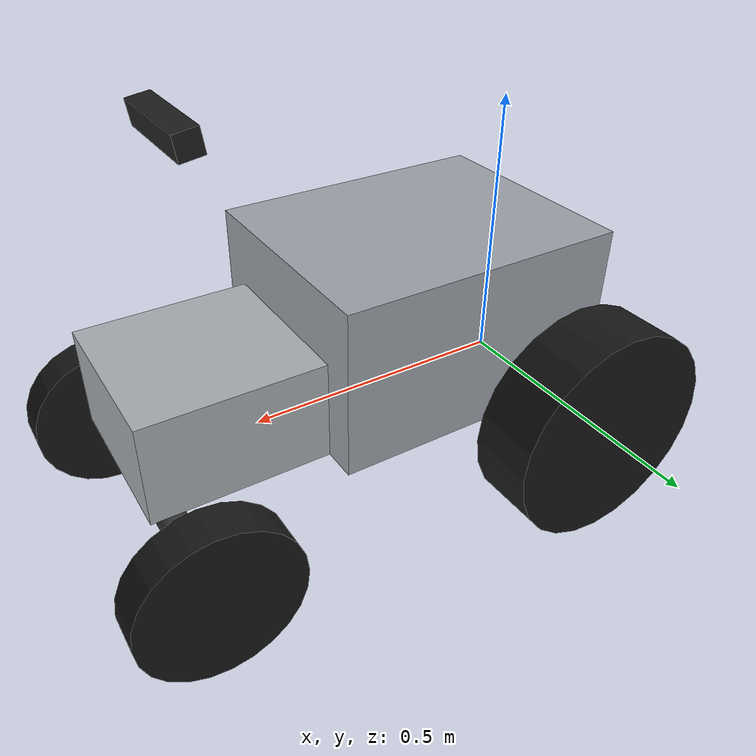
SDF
<?xml version="1.0"?>
<sdf version="1.10">
  <model name="carma_ugv">

    <!-- ===================== chassis ===================== -->
    <link name="base_link">
      <inertial>
        <pose>0.32 0 0.14 0 0 0</pose>
        <mass>35.0</mass>
        <inertia>
          <ixx>0.82</ixx><ixy>0</ixy><ixz>0</ixz>
          <iyy>1.87</iyy><iyz>0</iyz>
          <izz>2.23</izz>
        </inertia>
      </inertial>

      <!-- Main body, over the rear axle where the mass sits on a tractor. -->
      <collision name="body_collision">
        <pose>0.18 0 0.16 0 0 0</pose>
        <geometry><box><size>0.52 0.42 0.30</size></box></geometry>
      </collision>
      <visual name="body_visual">
        <pose>0.18 0 0.16 0 0 0</pose>
        <geometry><box><size>0.52 0.42 0.30</size></box></geometry>
        <material>
          <ambient>0.28 0.29 0.31 1</ambient>
          <diffuse>0.62 0.64 0.67 1</diffuse>
          <specular>0.30 0.30 0.30 1</specular>
        </material>
      </visual>

      <!-- Bonnet, lower and narrower, carrying the camera mount. -->
      <collision name="hood_collision">
        <pose>0.58 0 0.10 0 0 0</pose>
        <geometry><box><size>0.34 0.30 0.18</size></box></geometry>
      </collision>
      <visual name="hood_visual">
        <pose>0.58 0 0.10 0 0 0</pose>
        <geometry><box><size>0.34 0.30 0.18</size></box></geometry>
        <material>
          <ambient>0.30 0.31 0.33 1</ambient>
          <diffuse>0.66 0.68 0.70 1</diffuse>
          <specular>0.30 0.30 0.30 1</specular>
        </material>
      </visual>

      <!-- Front axle beam. Visual only; the kingpins carry the wheels. -->
      <visual name="front_axle_visual">
        <pose>0.70 0 -0.06 1.5707963 0 0</pose>
        <geometry><cylinder><radius>0.025</radius><length>0.52</length></cylinder></geometry>
        <material>
          <ambient>0.10 0.10 0.10 1</ambient>
          <diffuse>0.22 0.22 0.22 1</diffuse>
        </material>
      </visual>
    </link>

    <!-- ===================== sensors ===================== -->
    <!--
      0.55 above base_link, and base_link is 0.20 above ground, so the cameras
      sit at the documented 0.75 m.
    -->
    <link name="camera_link">
      <pose relative_to="base_link">0.60 0 0.55 0 0.15 0</pose>
      <inertial>
        <mass>0.30</mass>
        <inertia>
          <ixx>0.001</ixx><ixy>0</ixy><ixz>0</ixz>
          <iyy>0.001</iyy><iyz>0</iyz>
          <izz>0.001</izz>
        </inertia>
      </inertial>
      <visual name="camera_bar_visual">
        <geometry><box><size>0.04 0.18 0.04</size></box></geometry>
        <material>
          <ambient>0.05 0.05 0.05 1</ambient>
          <diffuse>0.12 0.12 0.12 1</diffuse>
        </material>
      </visual>

      <sensor name="stereo_left" type="camera">
        <pose>0 0.06 0 0 0 0</pose>
        <topic>/carma/stereo/left/image_rgb</topic>
        <update_rate>15</update_rate>
        <always_on>true</always_on>
        <camera>
          <camera_info_topic>/carma/stereo/left/camera_info</camera_info_topic>
          <horizontal_fov>1.0472</horizontal_fov>
          <image>
            <width>640</width>
            <height>480</height>
            <format>R8G8B8</format>
          </image>
          <clip><near>0.05</near><far>100.0</far></clip>
        </camera>
      </sensor>

      <sensor name="stereo_right" type="camera">
        <pose>0 -0.06 0 0 0 0</pose>
        <topic>/carma/stereo/right/image_rgb</topic>
        <update_rate>15</update_rate>
        <always_on>true</always_on>
        <camera>
          <camera_info_topic>/carma/stereo/right/camera_info</camera_info_topic>
          <horizontal_fov>1.0472</horizontal_fov>
          <image>
            <width>640</width>
            <height>480</height>
            <format>R8G8B8</format>
          </image>
          <clip><near>0.05</near><far>100.0</far></clip>
        </camera>
      </sensor>

      <!-- Co-located with stereo_left, same intrinsics: depth is registered. -->
      <sensor name="depth" type="depth_camera">
        <pose>0 0.06 0 0 0 0</pose>
        <topic>/carma/camera/depth</topic>
        <update_rate>15</update_rate>
        <always_on>true</always_on>
        <camera>
          <camera_info_topic>/carma/camera/depth/camera_info</camera_info_topic>
          <horizontal_fov>1.0472</horizontal_fov>
          <image>
            <width>640</width>
            <height>480</height>
            <format>R_FLOAT32</format>
          </image>
          <clip><near>0.10</near><far>20.0</far></clip>
        </camera>
      </sensor>
    </link>

    <joint name="camera_joint" type="fixed">
      <parent>base_link</parent>
      <child>camera_link</child>
    </joint>

    <!-- ===================== rear wheels, driven ===================== -->
    <link name="rear_left_wheel_link">
      <pose relative_to="base_link">0 0.30 0 -1.5707963 0 0</pose>
      <inertial>
        <mass>3.0</mass>
        <inertia>
          <ixx>0.0336</ixx><ixy>0</ixy><ixz>0</ixz>
          <iyy>0.0336</iyy><iyz>0</iyz>
          <izz>0.06</izz>
        </inertia>
      </inertial>
      <collision name="collision">
        <geometry><cylinder><radius>0.20</radius><length>0.12</length></cylinder></geometry>
        <surface>
          <friction>
            <ode><mu>1.4</mu><mu2>1.1</mu2></ode>
          </friction>
        </surface>
      </collision>
      <visual name="visual">
        <geometry><cylinder><radius>0.20</radius><length>0.12</length></cylinder></geometry>
        <material>
          <ambient>0.03 0.03 0.03 1</ambient>
          <diffuse>0.09 0.09 0.09 1</diffuse>
        </material>
      </visual>
    </link>

    <link name="rear_right_wheel_link">
      <pose relative_to="base_link">0 -0.30 0 -1.5707963 0 0</pose>
      <inertial>
        <mass>3.0</mass>
        <inertia>
          <ixx>0.0336</ixx><ixy>0</ixy><ixz>0</ixz>
          <iyy>0.0336</iyy><iyz>0</iyz>
          <izz>0.06</izz>
        </inertia>
      </inertial>
      <collision name="collision">
        <geometry><cylinder><radius>0.20</radius><length>0.12</length></cylinder></geometry>
        <surface>
          <friction>
            <ode><mu>1.4</mu><mu2>1.1</mu2></ode>
          </friction>
        </surface>
      </collision>
      <visual name="visual">
        <geometry><cylinder><radius>0.20</radius><length>0.12</length></cylinder></geometry>
        <material>
          <ambient>0.03 0.03 0.03 1</ambient>
          <diffuse>0.09 0.09 0.09 1</diffuse>
        </material>
      </visual>
    </link>

    <joint name="rear_left_wheel_joint" type="revolute">
      <parent>base_link</parent>
      <child>rear_left_wheel_link</child>
      <axis>
        <xyz expressed_in="__model__">0 1 0</xyz>
        <limit><lower>-1e16</lower><upper>1e16</upper></limit>
        <dynamics><damping>0.02</damping></dynamics>
      </axis>
    </joint>

    <joint name="rear_right_wheel_joint" type="revolute">
      <parent>base_link</parent>
      <child>rear_right_wheel_link</child>
      <axis>
        <xyz expressed_in="__model__">0 1 0</xyz>
        <limit><lower>-1e16</lower><upper>1e16</upper></limit>
        <dynamics><damping>0.02</damping></dynamics>
      </axis>
    </joint>

    <!-- ============ front wheels, steered and free-rolling ============ -->
    <link name="front_left_kingpin_link">
      <pose relative_to="base_link">0.70 0.26 -0.06 0 0 0</pose>
      <inertial>
        <mass>0.5</mass>
        <inertia>
          <ixx>0.001</ixx><ixy>0</ixy><ixz>0</ixz>
          <iyy>0.001</iyy><iyz>0</iyz>
          <izz>0.001</izz>
        </inertia>
      </inertial>
      <visual name="visual">
        <geometry><box><size>0.05 0.05 0.10</size></box></geometry>
        <material>
          <ambient>0.10 0.10 0.10 1</ambient>
          <diffuse>0.25 0.25 0.25 1</diffuse>
        </material>
      </visual>
    </link>

    <link name="front_right_kingpin_link">
      <pose relative_to="base_link">0.70 -0.26 -0.06 0 0 0</pose>
      <inertial>
        <mass>0.5</mass>
        <inertia>
          <ixx>0.001</ixx><ixy>0</ixy><ixz>0</ixz>
          <iyy>0.001</iyy><iyz>0</iyz>
          <izz>0.001</izz>
        </inertia>
      </inertial>
      <visual name="visual">
        <geometry><box><size>0.05 0.05 0.10</size></box></geometry>
        <material>
          <ambient>0.10 0.10 0.10 1</ambient>
          <diffuse>0.25 0.25 0.25 1</diffuse>
        </material>
      </visual>
    </link>

    <joint name="front_left_steer_joint" type="revolute">
      <parent>base_link</parent>
      <child>front_left_kingpin_link</child>
      <axis>
        <xyz expressed_in="__model__">0 0 1</xyz>
        <!-- A little beyond steering_limit, so the limit binds, not the joint. -->
        <limit><lower>-0.80</lower><upper>0.80</upper><effort>200</effort></limit>
        <dynamics><damping>1.0</damping></dynamics>
      </axis>
    </joint>

    <joint name="front_right_steer_joint" type="revolute">
      <parent>base_link</parent>
      <child>front_right_kingpin_link</child>
      <axis>
        <xyz expressed_in="__model__">0 0 1</xyz>
        <limit><lower>-0.80</lower><upper>0.80</upper><effort>200</effort></limit>
        <dynamics><damping>1.0</damping></dynamics>
      </axis>
    </joint>

    <link name="front_left_wheel_link">
      <pose relative_to="front_left_kingpin_link">0 0 0 -1.5707963 0 0</pose>
      <inertial>
        <mass>1.5</mass>
        <inertia>
          <ixx>0.00796</ixx><ixy>0</ixy><ixz>0</ixz>
          <iyy>0.00796</iyy><iyz>0</iyz>
          <izz>0.0147</izz>
        </inertia>
      </inertial>
      <collision name="collision">
        <geometry><cylinder><radius>0.14</radius><length>0.07</length></cylinder></geometry>
        <surface>
          <friction>
            <ode><mu>1.0</mu><mu2>0.8</mu2></ode>
          </friction>
        </surface>
      </collision>
      <visual name="visual">
        <geometry><cylinder><radius>0.14</radius><length>0.07</length></cylinder></geometry>
        <material>
          <ambient>0.03 0.03 0.03 1</ambient>
          <diffuse>0.09 0.09 0.09 1</diffuse>
        </material>
      </visual>
    </link>

    <link name="front_right_wheel_link">
      <pose relative_to="front_right_kingpin_link">0 0 0 -1.5707963 0 0</pose>
      <inertial>
        <mass>1.5</mass>
        <inertia>
          <ixx>0.00796</ixx><ixy>0</ixy><ixz>0</ixz>
          <iyy>0.00796</iyy><iyz>0</iyz>
          <izz>0.0147</izz>
        </inertia>
      </inertial>
      <collision name="collision">
        <geometry><cylinder><radius>0.14</radius><length>0.07</length></cylinder></geometry>
        <surface>
          <friction>
            <ode><mu>1.0</mu><mu2>0.8</mu2></ode>
          </friction>
        </surface>
      </collision>
      <visual name="visual">
        <geometry><cylinder><radius>0.14</radius><length>0.07</length></cylinder></geometry>
        <material>
          <ambient>0.03 0.03 0.03 1</ambient>
          <diffuse>0.09 0.09 0.09 1</diffuse>
        </material>
      </visual>
    </link>

    <joint name="front_left_wheel_joint" type="revolute">
      <parent>front_left_kingpin_link</parent>
      <child>front_left_wheel_link</child>
      <axis>
        <xyz expressed_in="front_left_kingpin_link">0 1 0</xyz>
        <limit><lower>-1e16</lower><upper>1e16</upper></limit>
        <dynamics><damping>0.005</damping></dynamics>
      </axis>
    </joint>

    <joint name="front_right_wheel_joint" type="revolute">
      <parent>front_right_kingpin_link</parent>
      <child>front_right_wheel_link</child>
      <axis>
        <xyz expressed_in="front_right_kingpin_link">0 1 0</xyz>
        <limit><lower>-1e16</lower><upper>1e16</upper></limit>
        <dynamics><damping>0.005</damping></dynamics>
      </axis>
    </joint>

    <!-- ===================== running gear ===================== -->
    <plugin filename="gz-sim-ackermann-steering-system"
            name="gz::sim::systems::AckermannSteering">
      <left_joint>rear_left_wheel_joint</left_joint>
      <right_joint>rear_right_wheel_joint</right_joint>
      <left_steering_joint>front_left_steer_joint</left_steering_joint>
      <right_steering_joint>front_right_steer_joint</right_steering_joint>
      <kingpin_width>0.52</kingpin_width>
      <steering_limit>0.70</steering_limit>
      <wheel_base>0.70</wheel_base>
      <wheel_separation>0.60</wheel_separation>
      <wheel_radius>0.20</wheel_radius>
      <min_velocity>-1.0</min_velocity>
      <max_velocity>1.5</max_velocity>
      <min_acceleration>-2.0</min_acceleration>
      <max_acceleration>2.0</max_acceleration>
      <steer_p_gain>2.0</steer_p_gain>
      <topic>/carma/cmd_vel</topic>
      <odom_topic>/carma/odom</odom_topic>
      <tf_topic>/carma/tf</tf_topic>
      <frame_id>odom</frame_id>
      <child_frame_id>base_link</child_frame_id>
      <odom_publish_frequency>30</odom_publish_frequency>
    </plugin>

    <plugin filename="gz-sim-joint-state-publisher-system"
            name="gz::sim::systems::JointStatePublisher">
      <topic>/carma/joint_states</topic>
      <joint_name>rear_left_wheel_joint</joint_name>
      <joint_name>rear_right_wheel_joint</joint_name>
      <joint_name>front_left_steer_joint</joint_name>
      <joint_name>front_right_steer_joint</joint_name>
      <joint_name>front_left_wheel_joint</joint_name>
      <joint_name>front_right_wheel_joint</joint_name>
    </plugin>
  </model>
</sdf>
